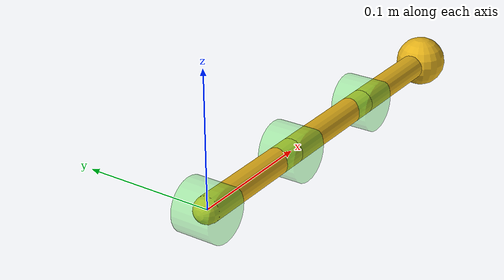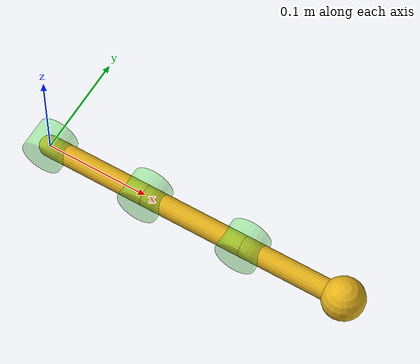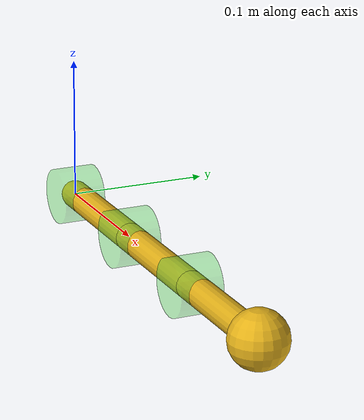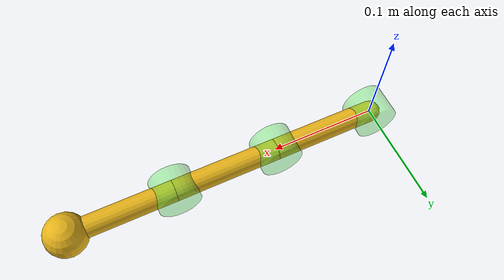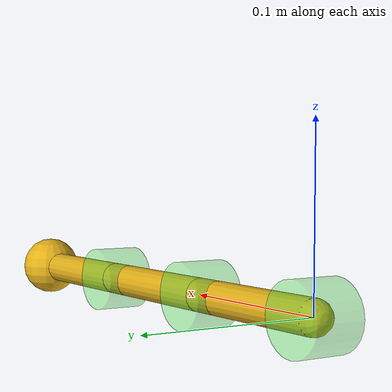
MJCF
<mujoco model="3-joint-planar-manipulator-with-mass">

    <default>
        <joint axis="0 1 0"/>
        <geom type="capsule" size=".01" rgba=".9 .7 .1 1"/>
        <default class="visual_cylinder">
            <geom type="cylinder" fromto="0 .015 0 0 -.015 0" size=".02" rgba=".3 .9 .3 .4"/>
        </default>
    </default>

    <worldbody>
        <light pos="0 0 1"/>
        <body pos="0 0 0">
            <joint/>
            <geom name="g1" class="visual_cylinder"/>
            <geom fromto="0 0 0 .1 0 0"/>
            <body pos=".1 0 0">
                <joint/>
                <geom name="g2" class="visual_cylinder"/>
                <geom fromto="0 0 0 .1 0 0"/>
                <body pos=".1 0 0">
                    <joint/>
                    <geom name="g3" class="visual_cylinder"/>
                    <geom fromto="0 0 0 .1 0 0"/>
                    <body pos=".1 0 0">
                        <geom type="sphere" size="0.02" mass="0.05"/> <!-- End-effector -->
                    </body>
                </body>
            </body>
        </body>
    </worldbody>

</mujoco>
